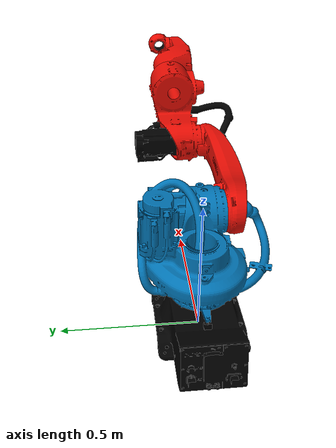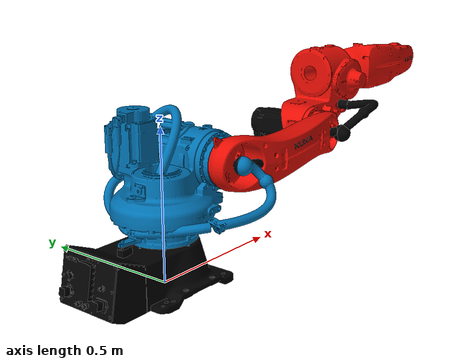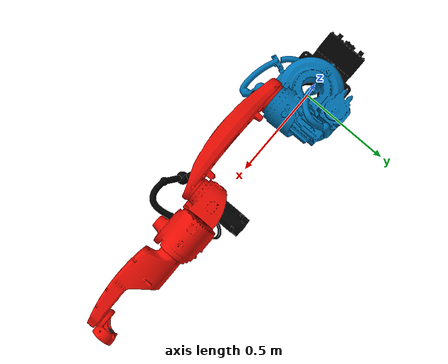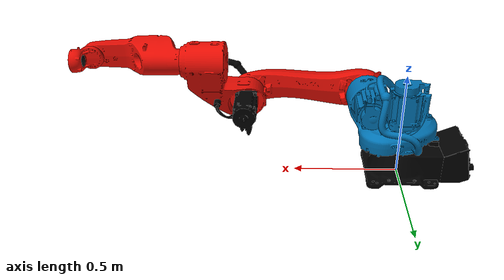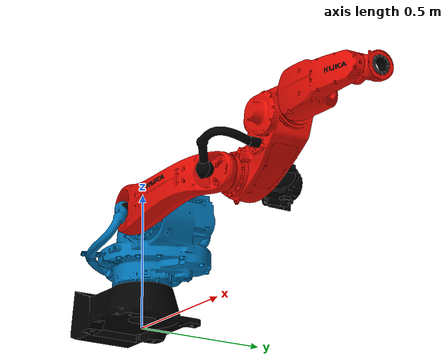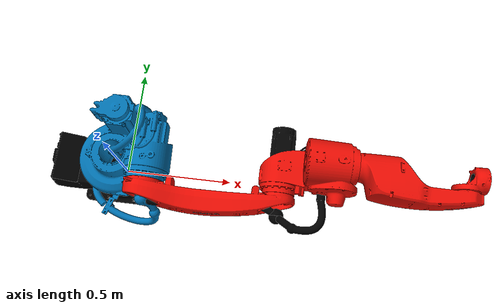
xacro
<?xml version="1.0" encoding="UTF-8"?>
<robot xmlns:xacro="http://ros.org/wiki/xacro" name="kr12_r1450_3_hw">
  <!-- Import macro files  -->
  <xacro:include filename="$(find kuka_cybertech_support)/urdf/kr12_r1450_3_hw_macro.xacro"/>
  <xacro:include filename="$(find kuka_cybertech_support)/urdf/kr_cybertech_ros2_control_macro.xacro"/>
  <!-- Read additional arguments  -->
  <xacro:arg name="driver_version" default="eki_rsi"/>
  <xacro:arg name="mode" default="hardware"/>
  <xacro:arg name="gpio_config" default=""/>
  <xacro:arg name="roundtrip_time" default="0"/>
  <xacro:arg name="client_ip" default="0.0.0.0"/>
  <xacro:arg name="client_port" default="59152"/>
  <xacro:arg name="mxa_client_port" default="1337"/>
  <xacro:arg name="controller_ip" default="0.0.0.0"/>
  <xacro:arg name="verify_robot_model" default="true"/>
  <xacro:arg name="prefix" default=""/>
  <xacro:arg name="x" default="0"/>
  <xacro:arg name="y" default="0"/>
  <xacro:arg name="z" default="0"/>
  <xacro:arg name="roll" default="0"/>
  <xacro:arg name="pitch" default="0"/>
  <xacro:arg name="yaw" default="0"/>
  <xacro:arg name="rsi_xml_config_file" default=""/>
  <xacro:kuka_cybertech_ros2_control name="$(arg prefix)kr12_r1450_3_hw" driver_version="$(arg driver_version)" client_ip="$(arg client_ip)" client_port="$(arg client_port)" mxa_client_port="$(arg mxa_client_port)" controller_ip="$(arg controller_ip)" prefix="$(arg prefix)" mode="$(arg mode)" gpio_config="$(arg gpio_config)" roundtrip_time="$(arg roundtrip_time)" verify_robot_model="$(arg verify_robot_model)" rsi_xml_config_file="$(arg rsi_xml_config_file)">
    <ext_axes_ros2_control_joints/>
  </xacro:kuka_cybertech_ros2_control>
  <!-- world link -->
  <link name="world"/>
  <!-- robot links, joints -->
  <xacro:kuka_kr12_r1450_3_hw_robot prefix="$(arg prefix)" package_name="kuka_cybertech_support"/>
  <!-- default world - base_link joint -->
  <joint name="$(arg prefix)world-base_link" type="fixed">
    <parent link="world"/>
    <child link="$(arg prefix)base_link"/>
    <origin xyz="$(arg x) $(arg y) $(arg z)" rpy="$(arg roll) $(arg pitch) $(arg yaw)"/>
  </joint>
</robot>

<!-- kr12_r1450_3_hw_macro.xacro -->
<robot xmlns:xacro="http://www.ros.org/wiki/xacro" name="kr12_r1450_3_hw">
  <xacro:macro name="kuka_kr12_r1450_3_hw_robot" params="prefix package_name">
    <link name="${prefix}base"/>
    <link name="${prefix}base_link">
      <collision>
        <geometry>
          <mesh filename="package://${package_name}/meshes/kr12_r1450_3_hw/collision/base_link.stl"/>
        </geometry>
        <origin rpy="0.0 -0.0 0.0" xyz="0.0 0.0 0.0"/>
      </collision>
      <inertial>
        <inertia ixx="0.4960299910274121" ixy="0.0" ixz="0.0" iyy="0.6048157081105422" iyz="0.0" izz="0.6360659708620461"/>
        <mass value="3.727E1"/>
        <origin rpy="-1.55312900753334 -1.5297115505069407 -3.1392650967640674" xyz="-0.007639999999999999 -3.0E-5 0.17743"/>
      </inertial>
      <visual>
        <geometry>
          <mesh filename="package://${package_name}/meshes/kr12_r1450_3_hw/visual/base_link.dae"/>
        </geometry>
        <origin rpy="0.0 -0.0 0.0" xyz="0.0 0.0 0.0"/>
      </visual>
    </link>
    <link name="${prefix}flange"/>
    <link name="${prefix}link_1">
      <collision>
        <geometry>
          <mesh filename="package://${package_name}/meshes/kr12_r1450_3_hw/collision/link_1.stl"/>
        </geometry>
        <origin rpy="-3.141592653589793 0.0 -0.0" xyz="0.0 -1.7512449227807152e-17 0.14300000000000002"/>
      </collision>
      <inertial>
        <inertia ixx="1.1070389663856106" ixy="0.0" ixz="0.0" iyy="0.9542136834731694" iyz="0.0" izz="1.3157517337003277"/>
        <mass value="6.844E1"/>
        <origin rpy="0.46884540930966767 0.33788002249960064 -0.6970875425285978" xyz="0.07197355961426066 -0.04009006151373466 -0.1686780800701344"/>
      </inertial>
      <visual>
        <geometry>
          <mesh filename="package://${package_name}/meshes/kr12_r1450_3_hw/visual/link_1.dae"/>
        </geometry>
        <origin rpy="-3.141592653589793 0.0 -0.0" xyz="0.0 -1.7512449227807152e-17 0.14300000000000002"/>
      </visual>
    </link>
    <link name="${prefix}link_2">
      <collision>
        <geometry>
          <mesh filename="package://${package_name}/meshes/kr12_r1450_3_hw/collision/link_2.stl"/>
        </geometry>
        <origin rpy="1.5707963267948968 -0.0 1.5707963267948966" xyz="-0.374 -0.16499999999999998 0.08340000000000004"/>
      </collision>
      <inertial>
        <inertia ixx="1.6356924888576403" ixy="0.0" ixz="0.0" iyy="0.11407398602997554" iyz="0.0" izz="1.6483548252231541"/>
        <mass value="2.8532E1"/>
        <origin rpy="2.484093989675895 -1.5635756866435466 2.233732909604762" xyz="0.24280395864292725 3.87396607318099E-4 -0.0409828683583345"/>
      </inertial>
      <visual>
        <geometry>
          <mesh filename="package://${package_name}/meshes/kr12_r1450_3_hw/visual/link_2.dae"/>
        </geometry>
        <origin rpy="1.5707963267948968 -0.0 1.5707963267948966" xyz="-0.374 -0.16499999999999998 0.08340000000000004"/>
      </visual>
    </link>
    <link name="${prefix}link_3">
      <collision>
        <geometry>
          <mesh filename="package://${package_name}/meshes/kr12_r1450_3_hw/collision/link_3.stl"/>
        </geometry>
        <origin rpy="1.5707963267948968 -0.0 -0.0" xyz="-0.16500000000000004 0.934 0.07544500000000004"/>
      </collision>
      <inertial>
        <inertia ixx="0.38475715639313324" ixy="0.0" ixz="0.0" iyy="0.28985566710648264" iyz="0.0" izz="0.5180855326212194"/>
        <mass value="2.391E1"/>
        <origin rpy="0.33417721174947274 -0.23553563739349756 1.208184813745186" xyz="0.1235252208281054 -0.0939537720618988 0.06767732747804266"/>
      </inertial>
      <visual>
        <geometry>
          <mesh filename="package://${package_name}/meshes/kr12_r1450_3_hw/visual/link_3.dae"/>
        </geometry>
        <origin rpy="1.5707963267948968 -0.0 -0.0" xyz="-0.16500000000000004 0.934 0.07544500000000004"/>
      </visual>
    </link>
    <link name="${prefix}link_4">
      <collision>
        <geometry>
          <mesh filename="package://${package_name}/meshes/kr12_r1450_3_hw/collision/link_4.stl"/>
        </geometry>
        <origin rpy="1.8369701987210297e-16 1.5707963267948966 0.0" xyz="-1.122 1.678228889588536e-17 0.454"/>
      </collision>
      <inertial>
        <inertia ixx="0.0266324235481152" ixy="0.0" ixz="0.0" iyy="0.12335500610038092" iyz="0.0" izz="0.1278161448559377"/>
        <mass value="9.9E0"/>
        <origin rpy="-3.1293274108527234 -1.432579422001952 -1.5644645134037816" xyz="4.1292929292929305E-4 -0.07045919595959596 -0.21818545454545454"/>
      </inertial>
      <visual>
        <geometry>
          <mesh filename="package://${package_name}/meshes/kr12_r1450_3_hw/visual/link_4.dae"/>
        </geometry>
        <origin rpy="1.8369701987210297e-16 1.5707963267948966 0.0" xyz="-1.122 1.678228889588536e-17 0.454"/>
      </visual>
    </link>
    <link name="${prefix}link_5">
      <collision>
        <geometry>
          <mesh filename="package://${package_name}/meshes/kr12_r1450_3_hw/collision/link_5.stl"/>
        </geometry>
        <origin rpy="1.5707963267948968 -3.749399456654644e-33 -6.123233995736766e-17" xyz="-0.8651999999999999 1.122 0.0645"/>
      </collision>
      <inertial>
        <inertia ixx="0.0021390105045295924" ixy="0.0" ixz="0.0" iyy="0.004443322771594145" iyz="0.0" izz="0.004863426723876266"/>
        <mass value="1.94E0"/>
        <origin rpy="-0.011400445811909628 -0.9423868288967098 3.1397288077672774" xyz="0.01791 -5.0000000000000016E-5 0.02925000000000001"/>
      </inertial>
      <visual>
        <geometry>
          <mesh filename="package://${package_name}/meshes/kr12_r1450_3_hw/visual/link_5.dae"/>
        </geometry>
        <origin rpy="1.5707963267948968 -3.749399456654644e-33 -6.123233995736766e-17" xyz="-0.8651999999999999 1.122 0.0645"/>
      </visual>
    </link>
    <link name="${prefix}link_6">
      <collision>
        <geometry>
          <mesh filename="package://${package_name}/meshes/kr12_r1450_3_hw/collision/link_6.stl"/>
        </geometry>
        <origin rpy="1.2246467991473532e-16 1.5707963267948966 0.0" xyz="-1.1220000000000003 -5.249702461892625e-17 0.9167"/>
      </collision>
      <inertial>
        <inertia ixx="3.0104E-4" ixy="0.0" ixz="0.0" iyy="3.0185E-4" iyz="0.0" izz="4.4735E-4"/>
        <mass value="5.0E-1"/>
        <origin rpy="0.0 -0.0 0.0" xyz="0.0 -5.0E-5 -0.00862"/>
      </inertial>
      <visual>
        <geometry>
          <mesh filename="package://${package_name}/meshes/kr12_r1450_3_hw/visual/link_6.dae"/>
        </geometry>
        <origin rpy="1.2246467991473532e-16 1.5707963267948966 0.0" xyz="-1.1220000000000003 -5.249702461892625e-17 0.9167"/>
      </visual>
    </link>
    <link name="${prefix}tool0"/>
    <joint name="${prefix}base_link-base" type="fixed">
      <child link="${prefix}base"/>
      <parent link="${prefix}base_link"/>
    </joint>
    <joint name="${prefix}joint_1" type="revolute">
      <axis xyz="0.0 0.0 1.0"/>
      <child link="${prefix}link_1"/>
      <limit effort="7.1712E2" lower="-2.967059725E0" upper="2.967059725E0" velocity="3.1415926535897931E0"/>
      <origin rpy="3.141592653589793 -0.0 0.0" xyz="0.0 0.0 0.14300000000000002"/>
      <parent link="${prefix}base_link"/>
    </joint>
    <joint name="${prefix}joint_2" type="revolute">
      <axis xyz="0.0 0.0 1.0"/>
      <child link="${prefix}link_2"/>
      <limit effort="6.4717893753510191E2" lower="-3.2288591125E0" upper="1.1344640125E0" velocity="2.9670597283903604E0"/>
      <origin rpy="1.5707963267948966 -0.0 0.0" xyz="0.165 0.0834 -0.231"/>
      <parent link="${prefix}link_1"/>
    </joint>
    <joint name="${prefix}joint_3" type="revolute">
      <axis xyz="0.0 0.0 1.0"/>
      <child link="${prefix}link_3"/>
      <limit effort="3.7800154574697081E2" lower="-2.0943951E0" upper="3.14159265E0" velocity="4.5378560551852569E0"/>
      <origin rpy="0.0 -0.0 0.0" xyz="0.56 0.0 0.007954999999999999"/>
      <parent link="${prefix}link_2"/>
    </joint>
    <joint name="${prefix}joint_4" type="revolute">
      <axis xyz="0.0 0.0 1.0"/>
      <child link="${prefix}link_4"/>
      <limit effort="5.4835130643148524E1" lower="-3.14159265E0" upper="3.14159265E0" velocity="7.5049157835756173E0"/>
      <origin rpy="1.5707963267948966 -0.0 -1.5707963267948966" xyz="0.289 -0.188 0.075445"/>
      <parent link="${prefix}link_3"/>
    </joint>
    <joint name="${prefix}joint_5" type="revolute">
      <axis xyz="0.0 0.0 1.0"/>
      <child link="${prefix}link_5"/>
      <limit effort="4.96756170567014E1" lower="-2.44346095E0" upper="2.44346095E0" velocity="7.8539816339744828E0"/>
      <origin rpy="0.0 1.5707963267948966 1.5707963267948966" xyz="0.0 -0.0645 -0.4112"/>
      <parent link="${prefix}link_4"/>
    </joint>
    <joint name="${prefix}joint_6" type="revolute">
      <axis xyz="0.0 0.0 1.0"/>
      <child link="${prefix}link_6"/>
      <limit effort="2.8117123201915362E1" lower="-6.108652375E0" upper="6.108652375E0" velocity="1.2566370614359172E1"/>
      <origin rpy="1.5707963267948966 -0.0 -1.5707963267948966" xyz="0.051500000000000004 0.0 0.0645"/>
      <parent link="${prefix}link_5"/>
    </joint>
    <joint name="${prefix}link6-flange" type="fixed">
      <child link="${prefix}flange"/>
      <origin rpy="0.0 1.5707963267948966 0.0" xyz="0.0 0.0 -0.0285"/>
      <parent link="${prefix}link_6"/>
    </joint>
    <joint name="${prefix}link6-tool0" type="fixed">
      <child link="${prefix}tool0"/>
      <origin rpy="3.141592653589793 1.2246467991473532E-16 3.141592653589793" xyz="0.0 0.0 -0.0285"/>
      <parent link="${prefix}link_6"/>
    </joint>
  </xacro:macro>
</robot>
